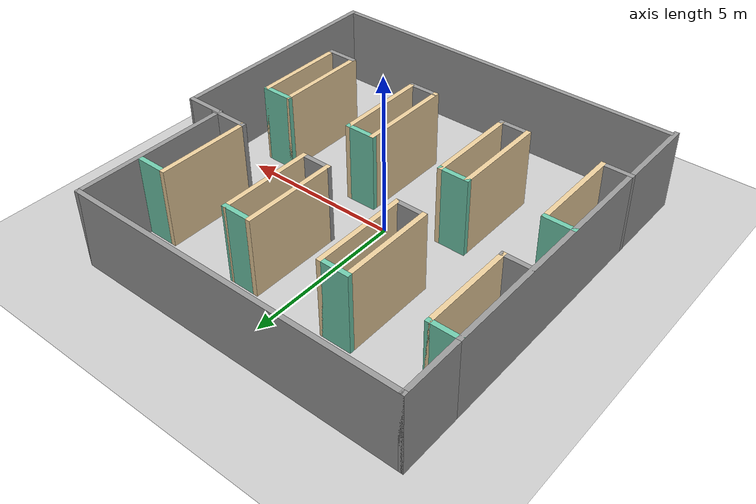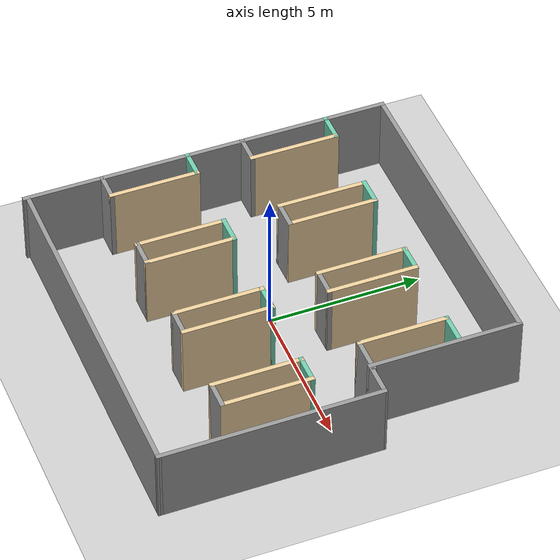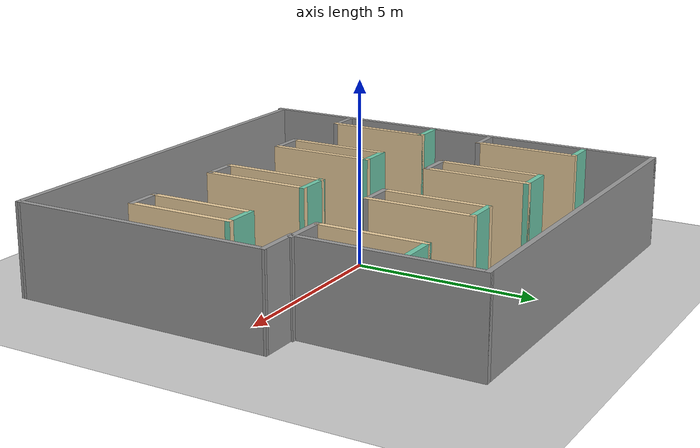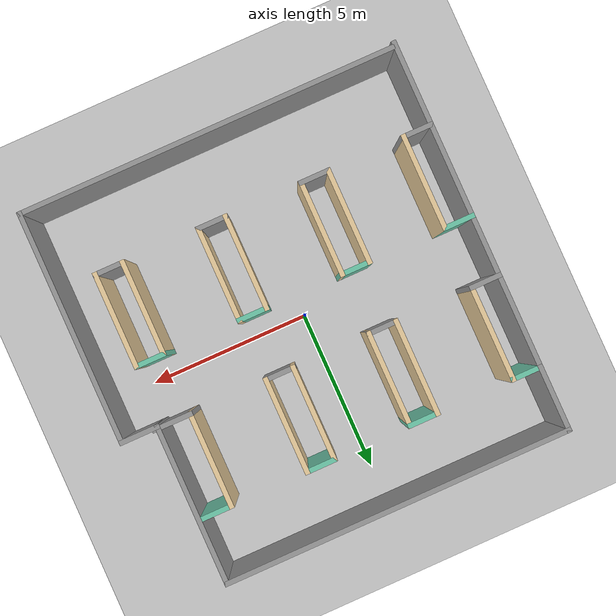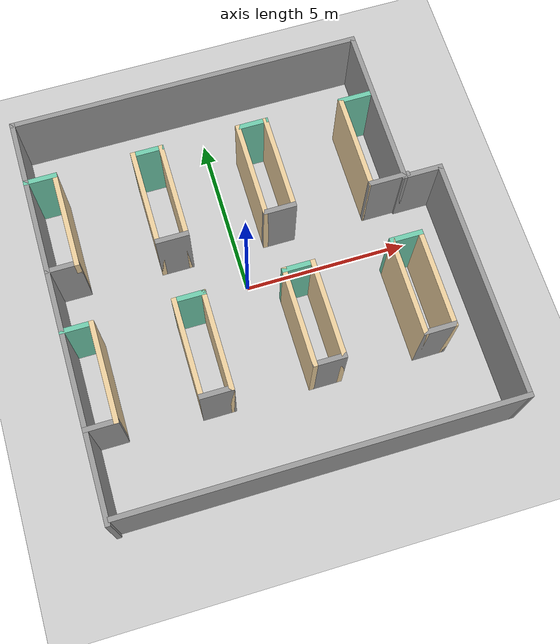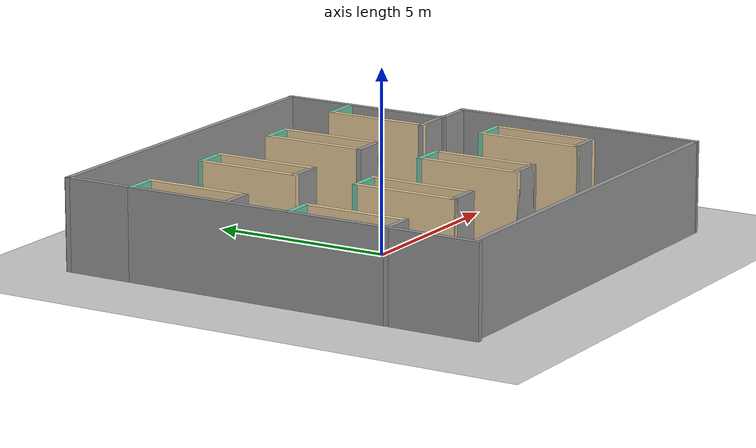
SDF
<sdf version="1.4">
 <world name="default">
  <light name="sun" type="directional">
   <pose>0 0 10 0 -0 0</pose>
   <diffuse>0.8 0.8 0.8 1</diffuse>
   <specular>0.2 0.2 0.2 1</specular>
   <attenuation>
    <range>1000</range>
    <constant>0.9</constant>
    <linear>0.01</linear>
    <quadratic>0.001</quadratic>
   </attenuation>
   <direction>-0.5 0.1 -0.9</direction>
   <spot><inner_angle>0</inner_angle><outer_angle>0</outer_angle><falloff>0</falloff></spot>
  </light>
  <model name="ground_plane">
   <static>1</static>
   <link name="link">
    <collision name="collision">
     <geometry><plane><normal>0 0 1</normal><size>100 100</size></plane></geometry>
     <surface>
      <contact><collide_bitmask>65535</collide_bitmask></contact>
      <friction><ode><mu>100</mu><mu2>50</mu2></ode></friction>
     </surface>
    </collision>
    <visual name="visual">
     <cast_shadows>0</cast_shadows>
     <geometry><plane><normal>0 0 1</normal><size>100 100</size></plane></geometry>
     <material>
      <script><uri>file://media/materials/scripts/gazebo.material</uri><name>Gazebo/Grey</name></script>
     </material>
    </visual>
   </link>
  </model>
  <gravity>0 0 -9.8</gravity>
  <magnetic_field>6e-06 2.3e-05 -4.2e-05</magnetic_field>
  <atmosphere type="adiabatic"/>
  <physics type="ode">
   <max_step_size>0.001</max_step_size>
   <real_time_factor>1</real_time_factor>
   <real_time_update_rate>1000</real_time_update_rate>
  </physics>
  <scene><ambient>0.4 0.4 0.4 1</ambient><background>0.7 0.7 0.7 1</background><shadows>1</shadows></scene>
  <spherical_coordinates>
   <surface_model>EARTH_WGS84</surface_model>
   <latitude_deg>0</latitude_deg>
   <longitude_deg>0</longitude_deg>
   <elevation>0</elevation>
   <heading_deg>0</heading_deg>
  </spherical_coordinates>
  <model name="cbs">
   <pose>0.37313 0.000499 0 0 -0 0</pose>
   <link name="Wall_0">
    <collision name="Wall_0_Collision">
     <geometry><box><size>10.25 0.15 2.5</size></box></geometry>
     <pose>0 0 1.25 0 -0 0</pose>
    </collision>
    <visual name="Wall_0_Visual">
     <pose>0 0 1.25 0 -0 0</pose>
     <geometry><box><size>10.25 0.15 2.5</size></box></geometry>
     <material>
      <script><uri>file://media/materials/scripts/gazebo.material</uri><name>Gazebo/Grey</name></script>
      <ambient>0 0 0 1</ambient>
     </material>
     <meta><layer>0</layer></meta>
    </visual>
    <pose>-5.8539 -0.975 0 0 -0 1.5708</pose>
   </link>
   <link name="Wall_141">
    <collision name="Wall_141_Collision">
     <geometry><box><size>1.25 0.15 2.5</size></box></geometry>
     <pose>0 0 1.25 0 -0 0</pose>
    </collision>
    <visual name="Wall_141_Visual">
     <pose>0 0 1.25 0 -0 0</pose>
     <geometry><box><size>1.25 0.15 2.5</size></box></geometry>
     <material>
      <script><uri>file://media/materials/scripts/gazebo.material</uri><name>Gazebo/Grey</name></script>
      <ambient>1 1 1 1</ambient>
     </material>
     <meta><layer>0</layer></meta>
    </visual>
    <pose>4.2961 1.22882 0 0 -0 0</pose>
   </link>
   <link name="Wall_143">
    <collision name="Wall_143_Collision">
     <geometry><box><size>2.99618 0.15 2.5</size></box></geometry>
     <pose>0 0 1.25 0 -0 0</pose>
    </collision>
    <visual name="Wall_143_Visual">
     <pose>0 0 1.25 0 -0 0</pose>
     <geometry><box><size>2.99618 0.15 2.5</size></box></geometry>
     <material>
      <script><uri>file://media/materials/scripts/gazebo.material</uri><name>Gazebo/Grey</name></script>
      <ambient>0.921569 0.807843 0.615686 1</ambient>
     </material>
     <meta><layer>0</layer></meta>
    </visual>
    <pose>3.7461 2.65191 0 0 -0 1.5708</pose>
   </link>
   <link name="Wall_144">
    <collision name="Wall_144_Collision">
     <geometry><box><size>1 0.15 2.5</size></box></geometry>
     <pose>0 0 1.25 0 -0 0</pose>
    </collision>
    <visual name="Wall_144_Visual">
     <pose>0 0 1.25 0 -0 0</pose>
     <geometry><box><size>1 0.15 2.5</size></box></geometry>
     <material>
      <script><uri>file://media/materials/scripts/gazebo.material</uri><name>Gazebo/Grey</name></script>
      <ambient>0.435294 0.796078 0.67451 1</ambient>
     </material>
     <meta><layer>0</layer></meta>
    </visual>
    <pose>4.1711 4.075 0 0 -0 0</pose>
   </link>
   <link name="Wall_153">
    <collision name="Wall_153_Collision">
     <geometry><box><size>1 0.15 2.5</size></box></geometry>
     <pose>0 0 1.25 0 -0 0</pose>
    </collision>
    <visual name="Wall_153_Visual">
     <pose>0 0 1.25 0 -0 0</pose>
     <geometry><box><size>1 0.15 2.5</size></box></geometry>
     <material>
      <script><uri>file://media/materials/scripts/gazebo.material</uri><name>Gazebo/Grey</name></script>
      <ambient>0.435294 0.796078 0.67451 1</ambient>
     </material>
     <meta><layer>0</layer></meta>
    </visual>
    <pose>-5.4289 -0.625 0 0 -0 0</pose>
   </link>
   <link name="Wall_154">
    <collision name="Wall_154_Collision">
     <geometry><box><size>3 0.15 2.5</size></box></geometry>
     <pose>0 0 1.25 0 -0 0</pose>
    </collision>
    <visual name="Wall_154_Visual">
     <pose>0 0 1.25 0 -0 0</pose>
     <geometry><box><size>3 0.15 2.5</size></box></geometry>
     <material>
      <script><uri>file://media/materials/scripts/gazebo.material</uri><name>Gazebo/Grey</name></script>
      <ambient>0.921569 0.807843 0.615686 1</ambient>
     </material>
     <meta><layer>0</layer></meta>
    </visual>
    <pose>-5.0039 -2.05 0 0 -0 -1.5708</pose>
   </link>
   <link name="Wall_157">
    <collision name="Wall_157_Collision">
     <geometry><box><size>2.1 0.15 2.5</size></box></geometry>
     <pose>0 0 1.25 0 -0 0</pose>
    </collision>
    <visual name="Wall_157_Visual">
     <pose>0 0 1.25 0 -0 0</pose>
     <geometry><box><size>2.1 0.15 2.5</size></box></geometry>
     <material>
      <script><uri>file://media/materials/scripts/gazebo.material</uri><name>Gazebo/Grey</name></script>
      <ambient>0 0 0 1</ambient>
     </material>
     <meta><layer>0</layer></meta>
    </visual>
    <pose>-5.8539 5.05 0 0 -0 1.5708</pose>
   </link>
   <link name="Wall_159">
    <collision name="Wall_159_Collision">
     <geometry><box><size>1 0.15 2.5</size></box></geometry>
     <pose>0 0 1.25 0 -0 0</pose>
    </collision>
    <visual name="Wall_159_Visual">
     <pose>0 0 1.25 0 -0 0</pose>
     <geometry><box><size>1 0.15 2.5</size></box></geometry>
     <material>
      <script><uri>file://media/materials/scripts/gazebo.material</uri><name>Gazebo/Grey</name></script>
      <ambient>1 1 1 1</ambient>
     </material>
     <meta><layer>0</layer></meta>
    </visual>
    <pose>-5.4289 -3.475 0 0 -0 3.14159</pose>
   </link>
   <link name="Wall_162">
    <collision name="Wall_162_Collision">
     <geometry><box><size>3 0.15 2.5</size></box></geometry>
     <pose>0 0 1.25 0 -0 0</pose>
    </collision>
    <visual name="Wall_162_Visual">
     <pose>0 0 1.25 0 -0 0</pose>
     <geometry><box><size>3 0.15 2.5</size></box></geometry>
     <material>
      <script><uri>file://media/materials/scripts/gazebo.material</uri><name>Gazebo/Grey</name></script>
      <ambient>0.921569 0.807843 0.615686 1</ambient>
     </material>
     <meta><layer>0</layer></meta>
    </visual>
    <pose>-2.6539 -2.05 0 0 -0 -1.5708</pose>
   </link>
   <link name="Wall_163">
    <collision name="Wall_163_Collision">
     <geometry><box><size>1 0.15 2.5</size></box></geometry>
     <pose>0 0 1.25 0 -0 0</pose>
    </collision>
    <visual name="Wall_163_Visual">
     <pose>0 0 1.25 0 -0 0</pose>
     <geometry><box><size>1 0.15 2.5</size></box></geometry>
     <material>
      <script><uri>file://media/materials/scripts/gazebo.material</uri><name>Gazebo/Grey</name></script>
      <ambient>1 1 1 1</ambient>
     </material>
     <meta><layer>0</layer></meta>
    </visual>
    <pose>-2.2289 -3.475 0 0 -0 0</pose>
   </link>
   <link name="Wall_164">
    <collision name="Wall_164_Collision">
     <geometry><box><size>3 0.15 2.5</size></box></geometry>
     <pose>0 0 1.25 0 -0 0</pose>
    </collision>
    <visual name="Wall_164_Visual">
     <pose>0 0 1.25 0 -0 0</pose>
     <geometry><box><size>3 0.15 2.5</size></box></geometry>
     <material>
      <script><uri>file://media/materials/scripts/gazebo.material</uri><name>Gazebo/Grey</name></script>
      <ambient>0.921569 0.807843 0.615686 1</ambient>
     </material>
     <meta><layer>0</layer></meta>
    </visual>
    <pose>-1.8039 -2.05 0 0 -0 1.5708</pose>
   </link>
   <link name="Wall_165">
    <collision name="Wall_165_Collision">
     <geometry><box><size>1 0.15 2.5</size></box></geometry>
     <pose>0 0 1.25 0 -0 0</pose>
    </collision>
    <visual name="Wall_165_Visual">
     <pose>0 0 1.25 0 -0 0</pose>
     <geometry><box><size>1 0.15 2.5</size></box></geometry>
     <material>
      <script><uri>file://media/materials/scripts/gazebo.material</uri><name>Gazebo/Grey</name></script>
      <ambient>0.435294 0.796078 0.67451 1</ambient>
     </material>
     <meta><layer>0</layer></meta>
    </visual>
    <pose>-2.2289 -0.625 0 0 -0 3.14159</pose>
   </link>
   <link name="Wall_168">
    <collision name="Wall_168_Collision">
     <geometry><box><size>3 0.15 2.5</size></box></geometry>
     <pose>0 0 1.25 0 -0 0</pose>
    </collision>
    <visual name="Wall_168_Visual">
     <pose>0 0 1.25 0 -0 0</pose>
     <geometry><box><size>3 0.15 2.5</size></box></geometry>
     <material>
      <script><uri>file://media/materials/scripts/gazebo.material</uri><name>Gazebo/Grey</name></script>
      <ambient>0.921569 0.807843 0.615686 1</ambient>
     </material>
     <meta><layer>0</layer></meta>
    </visual>
    <pose>0.546097 -2.05 0 0 -0 -1.5708</pose>
   </link>
   <link name="Wall_171">
    <collision name="Wall_171_Collision">
     <geometry><box><size>1 0.15 2.5</size></box></geometry>
     <pose>0 0 1.25 0 -0 0</pose>
    </collision>
    <visual name="Wall_171_Visual">
     <pose>0 0 1.25 0 -0 0</pose>
     <geometry><box><size>1 0.15 2.5</size></box></geometry>
     <material>
      <script><uri>file://media/materials/scripts/gazebo.material</uri><name>Gazebo/Grey</name></script>
      <ambient>0.435294 0.796078 0.67451 1</ambient>
     </material>
     <meta><layer>0</layer></meta>
    </visual>
    <pose>0.971097 -0.625 0 0 -0 3.14159</pose>
   </link>
   <link name="Wall_175">
    <collision name="Wall_175_Collision">
     <geometry><box><size>1 0.15 2.5</size></box></geometry>
     <pose>0 0 1.25 0 -0 0</pose>
    </collision>
    <visual name="Wall_175_Visual">
     <pose>0 0 1.25 0 -0 0</pose>
     <geometry><box><size>1 0.15 2.5</size></box></geometry>
     <material>
      <script><uri>file://media/materials/scripts/gazebo.material</uri><name>Gazebo/Grey</name></script>
      <ambient>0.435294 0.796078 0.67451 1</ambient>
     </material>
     <meta><layer>0</layer></meta>
    </visual>
    <pose>4.1711 -0.625 0 0 -0 0</pose>
   </link>
   <link name="Wall_178">
    <collision name="Wall_178_Collision">
     <geometry><box><size>1 0.15 2.5</size></box></geometry>
     <pose>0 0 1.25 0 -0 0</pose>
    </collision>
    <visual name="Wall_178_Visual">
     <pose>0 0 1.25 0 -0 0</pose>
     <geometry><box><size>1 0.15 2.5</size></box></geometry>
     <material>
      <script><uri>file://media/materials/scripts/gazebo.material</uri><name>Gazebo/Grey</name></script>
      <ambient>1 1 1 1</ambient>
     </material>
     <meta><layer>0</layer></meta>
    </visual>
    <pose>0.971097 -3.475 0 0 -0 0</pose>
   </link>
   <link name="Wall_179">
    <collision name="Wall_179_Collision">
     <geometry><box><size>3 0.15 2.5</size></box></geometry>
     <pose>0 0 1.25 0 -0 0</pose>
    </collision>
    <visual name="Wall_179_Visual">
     <pose>0 0 1.25 0 -0 0</pose>
     <geometry><box><size>3 0.15 2.5</size></box></geometry>
     <material>
      <script><uri>file://media/materials/scripts/gazebo.material</uri><name>Gazebo/Grey</name></script>
      <ambient>0.921569 0.807843 0.615686 1</ambient>
     </material>
     <meta><layer>0</layer></meta>
    </visual>
    <pose>1.3961 -2.05 0 0 -0 1.5708</pose>
   </link>
   <link name="Wall_181">
    <collision name="Wall_181_Collision">
     <geometry><box><size>3 0.15 2.5</size></box></geometry>
     <pose>0 0 1.25 0 -0 0</pose>
    </collision>
    <visual name="Wall_181_Visual">
     <pose>0 0 1.25 0 -0 0</pose>
     <geometry><box><size>3 0.15 2.5</size></box></geometry>
     <material>
      <script><uri>file://media/materials/scripts/gazebo.material</uri><name>Gazebo/Grey</name></script>
      <ambient>0.921569 0.807843 0.615686 1</ambient>
     </material>
     <meta><layer>0</layer></meta>
    </visual>
    <pose>3.7461 -2.05 0 0 -0 -1.5708</pose>
   </link>
   <link name="Wall_182">
    <collision name="Wall_182_Collision">
     <geometry><box><size>1 0.15 2.5</size></box></geometry>
     <pose>0 0 1.25 0 -0 0</pose>
    </collision>
    <visual name="Wall_182_Visual">
     <pose>0 0 1.25 0 -0 0</pose>
     <geometry><box><size>1 0.15 2.5</size></box></geometry>
     <material>
      <script><uri>file://media/materials/scripts/gazebo.material</uri><name>Gazebo/Grey</name></script>
      <ambient>1 1 1 1</ambient>
     </material>
     <meta><layer>0</layer></meta>
    </visual>
    <pose>4.1711 -3.475 0 0 -0 0</pose>
   </link>
   <link name="Wall_183">
    <collision name="Wall_183_Collision">
     <geometry><box><size>3 0.15 2.5</size></box></geometry>
     <pose>0 0 1.25 0 -0 0</pose>
    </collision>
    <visual name="Wall_183_Visual">
     <pose>0 0 1.25 0 -0 0</pose>
     <geometry><box><size>3 0.15 2.5</size></box></geometry>
     <material>
      <script><uri>file://media/materials/scripts/gazebo.material</uri><name>Gazebo/Grey</name></script>
      <ambient>0.921569 0.807843 0.615686 1</ambient>
     </material>
     <meta><layer>0</layer></meta>
    </visual>
    <pose>4.5961 -2.05 0 0 -0 1.5708</pose>
   </link>
   <link name="Wall_3">
    <collision name="Wall_3_Collision">
     <geometry><box><size>10.75 0.15 2.5</size></box></geometry>
     <pose>0 0 1.25 0 -0 0</pose>
    </collision>
    <visual name="Wall_3_Visual">
     <pose>0 0 1.25 0 -0 0</pose>
     <geometry><box><size>10.75 0.15 2.5</size></box></geometry>
     <material>
      <script><uri>file://media/materials/scripts/gazebo.material</uri><name>Gazebo/Grey</name></script>
      <ambient>0 0 0 1</ambient>
     </material>
     <meta><layer>0</layer></meta>
    </visual>
    <pose>-0.553903 6.025 0 0 -0 0</pose>
   </link>
   <link name="Wall_4">
    <collision name="Wall_4_Collision">
     <geometry><box><size>5 0.15 2.5</size></box></geometry>
     <pose>0 0 1.25 0 -0 0</pose>
    </collision>
    <visual name="Wall_4_Visual">
     <pose>0 0 1.25 0 -0 0</pose>
     <geometry><box><size>5 0.15 2.5</size></box></geometry>
     <material>
      <script><uri>file://media/materials/scripts/gazebo.material</uri><name>Gazebo/Grey</name></script>
      <ambient>0 0 0 1</ambient>
     </material>
     <meta><layer>0</layer></meta>
    </visual>
    <pose>4.7461 3.6 0 0 -0 -1.5708</pose>
   </link>
   <link name="Wall_5">
    <collision name="Wall_5_Collision">
     <geometry><box><size>1.25 0.15 2.5</size></box></geometry>
     <pose>0 0 1.25 0 -0 0</pose>
    </collision>
    <visual name="Wall_5_Visual">
     <pose>0 0 1.25 0 -0 0</pose>
     <geometry><box><size>1.25 0.15 2.5</size></box></geometry>
     <material>
      <script><uri>file://media/materials/scripts/gazebo.material</uri><name>Gazebo/Grey</name></script>
      <ambient>0 0 0 1</ambient>
     </material>
     <meta><layer>0</layer></meta>
    </visual>
    <pose>5.2961 1.175 0 0 -0 0</pose>
   </link>
   <link name="Wall_6">
    <collision name="Wall_6_Collision">
     <geometry><box><size>7.25773 0.15 2.5</size></box></geometry>
     <pose>0 0 1.25 0 -0 0</pose>
    </collision>
    <visual name="Wall_6_Visual">
     <pose>0 0 1.25 0 -0 0</pose>
     <geometry><box><size>7.25773 0.15 2.5</size></box></geometry>
     <material>
      <script><uri>file://media/materials/scripts/gazebo.material</uri><name>Gazebo/Grey</name></script>
      <ambient>0 0 0 1</ambient>
     </material>
     <meta><layer>0</layer></meta>
    </visual>
    <pose>5.84996 -2.37886 0 0 -0 -1.56971</pose>
   </link>
   <link name="Wall_62">
    <collision name="Wall_62_Collision">
     <geometry><box><size>1 0.15 2.5</size></box></geometry>
     <pose>0 0 1.25 0 -0 0</pose>
    </collision>
    <visual name="Wall_62_Visual">
     <pose>0 0 1.25 0 -0 0</pose>
     <geometry><box><size>1 0.15 2.5</size></box></geometry>
     <material>
      <script><uri>file://media/materials/scripts/gazebo.material</uri><name>Gazebo/Grey</name></script>
      <ambient>0.435294 0.796078 0.67451 1</ambient>
     </material>
     <meta><layer>0</layer></meta>
    </visual>
    <pose>-5.4289 4.075 0 0 -0 0</pose>
   </link>
   <link name="Wall_63">
    <collision name="Wall_63_Collision">
     <geometry><box><size>3 0.15 2.5</size></box></geometry>
     <pose>0 0 1.25 0 -0 0</pose>
    </collision>
    <visual name="Wall_63_Visual">
     <pose>0 0 1.25 0 -0 0</pose>
     <geometry><box><size>3 0.15 2.5</size></box></geometry>
     <material>
      <script><uri>file://media/materials/scripts/gazebo.material</uri><name>Gazebo/Grey</name></script>
      <ambient>0.921569 0.807843 0.615686 1</ambient>
     </material>
     <meta><layer>0</layer></meta>
    </visual>
    <pose>-5.0039 2.65 0 0 -0 -1.5708</pose>
   </link>
   <link name="Wall_64">
    <collision name="Wall_64_Collision">
     <geometry><box><size>1 0.15 2.5</size></box></geometry>
     <pose>0 0 1.25 0 -0 0</pose>
    </collision>
    <visual name="Wall_64_Visual">
     <pose>0 0 1.25 0 -0 0</pose>
     <geometry><box><size>1 0.15 2.5</size></box></geometry>
     <material>
      <script><uri>file://media/materials/scripts/gazebo.material</uri><name>Gazebo/Grey</name></script>
      <ambient>1 1 1 1</ambient>
     </material>
     <meta><layer>0</layer></meta>
    </visual>
    <pose>-5.4289 1.225 0 0 -0 3.14159</pose>
   </link>
   <link name="Wall_67">
    <collision name="Wall_67_Collision">
     <geometry><box><size>3 0.15 2.5</size></box></geometry>
     <pose>0 0 1.25 0 -0 0</pose>
    </collision>
    <visual name="Wall_67_Visual">
     <pose>0 0 1.25 0 -0 0</pose>
     <geometry><box><size>3 0.15 2.5</size></box></geometry>
     <material>
      <script><uri>file://media/materials/scripts/gazebo.material</uri><name>Gazebo/Grey</name></script>
      <ambient>0.921569 0.807843 0.615686 1</ambient>
     </material>
     <meta><layer>0</layer></meta>
    </visual>
    <pose>-2.6539 2.65 0 0 -0 -1.5708</pose>
   </link>
   <link name="Wall_68">
    <collision name="Wall_68_Collision">
     <geometry><box><size>1 0.15 2.5</size></box></geometry>
     <pose>0 0 1.25 0 -0 0</pose>
    </collision>
    <visual name="Wall_68_Visual">
     <pose>0 0 1.25 0 -0 0</pose>
     <geometry><box><size>1 0.15 2.5</size></box></geometry>
     <material>
      <script><uri>file://media/materials/scripts/gazebo.material</uri><name>Gazebo/Grey</name></script>
      <ambient>1 1 1 1</ambient>
     </material>
     <meta><layer>0</layer></meta>
    </visual>
    <pose>-2.2289 1.225 0 0 -0 0</pose>
   </link>
   <link name="Wall_69">
    <collision name="Wall_69_Collision">
     <geometry><box><size>3 0.15 2.5</size></box></geometry>
     <pose>0 0 1.25 0 -0 0</pose>
    </collision>
    <visual name="Wall_69_Visual">
     <pose>0 0 1.25 0 -0 0</pose>
     <geometry><box><size>3 0.15 2.5</size></box></geometry>
     <material>
      <script><uri>file://media/materials/scripts/gazebo.material</uri><name>Gazebo/Grey</name></script>
      <ambient>0.921569 0.807843 0.615686 1</ambient>
     </material>
     <meta><layer>0</layer></meta>
    </visual>
    <pose>-1.8039 2.65 0 0 -0 1.5708</pose>
   </link>
   <link name="Wall_7">
    <collision name="Wall_7_Collision">
     <geometry><box><size>11.75 0.15 2.5</size></box></geometry>
     <pose>0 0 1.25 0 -0 0</pose>
    </collision>
    <visual name="Wall_7_Visual">
     <pose>0 0 1.25 0 -0 0</pose>
     <geometry><box><size>11.75 0.15 2.5</size></box></geometry>
     <material>
      <script><uri>file://media/materials/scripts/gazebo.material</uri><name>Gazebo/Grey</name></script>
      <ambient>0 0 0 1</ambient>
     </material>
     <meta><layer>0</layer></meta>
    </visual>
    <pose>0.053822 -5.93273 0 0 -0 3.14159</pose>
   </link>
   <link name="Wall_70">
    <collision name="Wall_70_Collision">
     <geometry><box><size>1 0.15 2.5</size></box></geometry>
     <pose>0 0 1.25 0 -0 0</pose>
    </collision>
    <visual name="Wall_70_Visual">
     <pose>0 0 1.25 0 -0 0</pose>
     <geometry><box><size>1 0.15 2.5</size></box></geometry>
     <material>
      <script><uri>file://media/materials/scripts/gazebo.material</uri><name>Gazebo/Grey</name></script>
      <ambient>0.435294 0.796078 0.67451 1</ambient>
     </material>
     <meta><layer>0</layer></meta>
    </visual>
    <pose>-2.2289 4.075 0 0 -0 3.14159</pose>
   </link>
   <link name="Wall_73">
    <collision name="Wall_73_Collision">
     <geometry><box><size>3 0.15 2.5</size></box></geometry>
     <pose>0 0 1.25 0 -0 0</pose>
    </collision>
    <visual name="Wall_73_Visual">
     <pose>0 0 1.25 0 -0 0</pose>
     <geometry><box><size>3 0.15 2.5</size></box></geometry>
     <material>
      <script><uri>file://media/materials/scripts/gazebo.material</uri><name>Gazebo/Grey</name></script>
      <ambient>0.921569 0.807843 0.615686 1</ambient>
     </material>
     <meta><layer>0</layer></meta>
    </visual>
    <pose>0.546097 2.65 0 0 -0 1.5708</pose>
   </link>
   <link name="Wall_74">
    <collision name="Wall_74_Collision">
     <geometry><box><size>1 0.15 2.5</size></box></geometry>
     <pose>0 0 1.25 0 -0 0</pose>
    </collision>
    <visual name="Wall_74_Visual">
     <pose>0 0 1.25 0 -0 0</pose>
     <geometry><box><size>1 0.15 2.5</size></box></geometry>
     <material>
      <script><uri>file://media/materials/scripts/gazebo.material</uri><name>Gazebo/Grey</name></script>
      <ambient>0.435294 0.796078 0.67451 1</ambient>
     </material>
     <meta><layer>0</layer></meta>
    </visual>
    <pose>0.971097 4.075 0 0 -0 0</pose>
   </link>
   <link name="Wall_75">
    <collision name="Wall_75_Collision">
     <geometry><box><size>3 0.15 2.5</size></box></geometry>
     <pose>0 0 1.25 0 -0 0</pose>
    </collision>
    <visual name="Wall_75_Visual">
     <pose>0 0 1.25 0 -0 0</pose>
     <geometry><box><size>3 0.15 2.5</size></box></geometry>
     <material>
      <script><uri>file://media/materials/scripts/gazebo.material</uri><name>Gazebo/Grey</name></script>
      <ambient>0.921569 0.807843 0.615686 1</ambient>
     </material>
     <meta><layer>0</layer></meta>
    </visual>
    <pose>1.3961 2.65 0 0 -0 -1.5708</pose>
   </link>
   <link name="Wall_76">
    <collision name="Wall_76_Collision">
     <geometry><box><size>1 0.15 2.5</size></box></geometry>
     <pose>0 0 1.25 0 -0 0</pose>
    </collision>
    <visual name="Wall_76_Visual">
     <pose>0 0 1.25 0 -0 0</pose>
     <geometry><box><size>1 0.15 2.5</size></box></geometry>
     <material>
      <script><uri>file://media/materials/scripts/gazebo.material</uri><name>Gazebo/Grey</name></script>
      <ambient>1 1 1 1</ambient>
     </material>
     <meta><layer>0</layer></meta>
    </visual>
    <pose>0.971097 1.225 0 0 -0 3.14159</pose>
   </link>
   <static>1</static>
  </model>
 </world>
</sdf>
